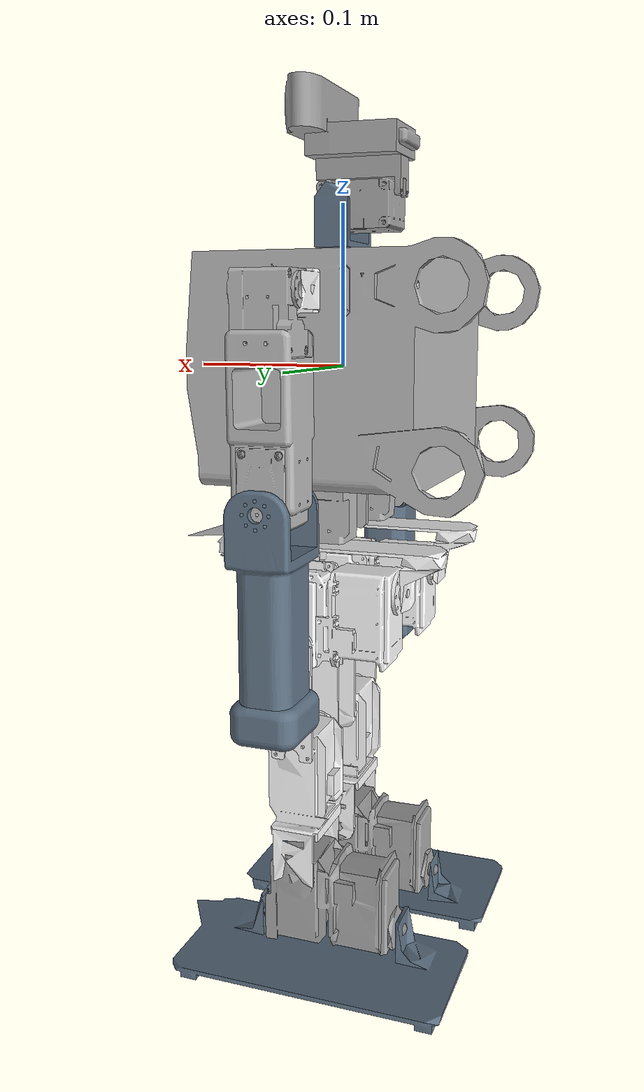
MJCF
<mujoco model="bez2">
  <compiler angle="radian"/>
  <default>
        <default class="mx106">
            <position kp="21" forcerange="-8 8" />
            <joint damping="1.7" armature="0.025" frictionloss="0.10" />
        </default>
        <default class="mx64">
            <position kp="12.5" forcerange="-5 5" />
            <joint damping="0.66" armature="0.012" frictionloss="0.09" />
        </default>
		<default class="xm430">
            <position kp="21.1" ctrlrange="-3.141592 3.141592" forcerange="-5 5"/>
            <joint damping="1.084" armature="0.045" frictionloss="0.03"/>
        </default>
    </default>
	<option noslip_iterations="1"></option>

  <asset>
    <mesh name="base_link" file="base_link.stl" scale="0.001 0.001 0.001"/>
    <mesh name="left_hip_side_v5_1" file="left_hip_side_v5_1.stl" scale="0.001 0.001 0.001"/>
    <mesh name="left_foot_v10_1" file="left_foot_v10_1.stl" scale="0.001 0.001 0.001"/>
    <mesh name="left_shoulder_v5_1" file="left_shoulder_v5_1.stl" scale="0.001 0.001 0.001"/>
    <mesh name="left_bicep_v6_1" file="left_bicep_v6_1.stl" scale="0.001 0.001 0.001"/>
    <mesh name="left_forearm_v4_1" file="left_forearm_v4_1.stl" scale="0.001 0.001 0.001"/>
    <mesh name="neck_v6_1" file="neck_v6_1.stl" scale="0.001 0.001 0.001"/>
    <mesh name="head_v4_1" file="head_v4_1.stl" scale="0.001 0.001 0.001"/>
    <mesh name="right_hip_side_v1_1" file="right_hip_side_v1_1.stl" scale="0.001 0.001 0.001"/>
    <mesh name="right_ankle_v2_1" file="right_ankle_v2_1.stl" scale="0.001 0.001 0.001"/>
    <mesh name="right_foot_v2_1" file="right_foot_v2_1.stl" scale="0.001 0.001 0.001"/>
    <mesh name="right_shoulder_v1_1" file="right_shoulder_v1_1.stl" scale="0.001 0.001 0.001"/>
    <mesh name="right_bicep_v2_1" file="right_bicep_v2_1.stl" scale="0.001 0.001 0.001"/>
    <mesh name="right_forearm_v1_1" file="right_forearm_v1_1.stl" scale="0.001 0.001 0.001"/>
    <mesh name="left_thigh_v1_1" file="left_thigh_v1_1.stl" scale="0.001 0.001 0.001"/>
    <mesh name="right_thigh_v1_1" file="right_thigh_v1_1.stl" scale="0.001 0.001 0.001"/>
    <mesh name="left_hip_front_v5_1" file="left_hip_front_v5_1.stl" scale="0.001 0.001 0.001"/>
    <mesh name="left_calve_v5_1" file="left_calve_v5_1.stl" scale="0.001 0.001 0.001"/>
    <mesh name="left_ankle_v7_1" file="left_ankle_v7_1.stl" scale="0.001 0.001 0.001"/>
    <mesh name="right_hip_front_v5_1" file="right_hip_front_v5_1.stl" scale="0.001 0.001 0.001"/>
    <mesh name="right_calve_v1_1" file="right_calve_v1_1.stl" scale="0.001 0.001 0.001"/>
  </asset>

  <worldbody>
    <body name="trunk">
      <freejoint name="root" />
      <site name="trunk" />
      <inertial pos="-0.132493 0.00329389 -0.0267196" quat="0.727595 0.68359 0.0487527 -0.0305389" mass="1.44293"
                diaginertia="0.00978489 0.00806535 0.00665576"/>
      <geom type="mesh" rgba="0.7 0.7 0.7 1" mesh="base_link"/>
      <body name="neck" pos="0 0.00025 0.0725">
        <inertial pos="8.93697e-11 0.00124098 0.0120405" quat="0.707107 0.707107 0 0" mass="0.00424711"
                  diaginertia="2e-06 2e-06 1e-06"/>
        <joint class="xm430" name="head_yaw" pos="0 0 0" axis="0 0 1"  actuatorfrcrange="-1.5 1.5"/>
        <geom pos="0 -0.00025 -0.0725" quat="1 0 0 0" type="mesh" rgba="0.364706 0.439216 0.509804 1" mesh="neck_v6_1"/>
        <body name="head" pos="0 -0.0185 0.025">
          <inertial pos="-0.0025762 0.0189918 0.0330059" quat="0.968363 -0.00401205 0.248843 0.0182951" mass="0.264339"
                    diaginertia="0.000267836 0.000238997 0.000135166"/>
          <joint class="xm430" name="head_pitch" pos="0 0 0" axis="0 1 0"  actuatorfrcrange="-1.5 1.5"/>
          <geom pos="0 0.01825 -0.0975" quat="1 0 0 0" type="mesh" rgba="0.627451 0.627451 0.627451 1" mesh="head_v4_1"/>
          <site name="camera" pos="0.015 0.00145 0.0474" quat="0 0.707107 0 -0.707107"/>
        </body>
      </body>
      <body name="left_shoulder" pos="0.003 0.084 0.04475">
        <inertial pos="8.92269e-11 0.00784403 0" quat="0.5 0.5 0.5 0.5" mass="0.0105929" diaginertia="3e-06 3e-06 1e-06"/>
        <joint class="xm430" name="left_shoulder_pitch" pos="0 0 0" axis="0 -1 0"  actuatorfrcrange="-4.1 4.1"/>
        <geom pos="-0.003 -0.084 -0.04475" quat="1 0 0 0" type="mesh" rgba="0.960784 0.960784 0.964706 1" mesh="left_shoulder_v5_1"/>
        <body name="left_bicep" pos="0.019 0.0303 0">
          <inertial pos="-0.0194205 0.000104779 -0.0605146" quat="0.692309 0.0113936 0.00585463 0.721487" mass="0.186364" diaginertia="0.000444025 0.000442243 3.47325e-05"/>
          <joint class="xm430" name="left_shoulder_roll" pos="0 0 0" axis="1 0 0"  actuatorfrcrange="-4.1 4.1"/>
          <geom pos="-0.022 -0.1143 -0.04475" quat="1 0 0 0" type="mesh" rgba="0.7 0.7 0.7 1" mesh="left_bicep_v6_1"/>
          <body name="left_forearm" pos="-0.020403 0.018801 -0.119141">
            <inertial pos="0.000490444 -0.0197004 -0.0814475" mass="0.0598454" diaginertia="0.000124 0.000119 2.1e-05"/>
            <joint class="xm430" name="left_elbow" pos="0 0 0" axis="0 -1 0"  actuatorfrcrange="-4.1 4.1"/>
            <geom pos="-0.001597 -0.133101 0.074391" type="mesh" rgba="0.364706 0.439216 0.509804 1" mesh="left_forearm_v4_1"/>
          </body>
        </body>
      </body>
      <body name="left_hip_side" pos="0.016 0.04125 -0.1085">
        <inertial pos="-0.0176303 0 -0.00718842" quat="0.487846 0.511866 0.511866 0.487846" mass="0.0392957" diaginertia="9.2e-05 9.01923e-05 6.80767e-06"/>
        <joint  class="xm430" name="left_hip_yaw" pos="0 0 0" axis="0 0 -1"  actuatorfrcrange="-4.1 4.1"/>
        <geom pos="-0.016 -0.04125 0.1085" quat="1 0 0 0" type="mesh" rgba="0.960784 0.960784 0.964706 1" mesh="left_hip_side_v5_1"/>
        <body name="left_hip_front" pos="-0.0707 0 -0.028">
          <inertial pos="0.0471916 0.000172982 -0.0174801" quat="0.456499 0.538085 0.517889 0.483595" mass="0.2722" diaginertia="0.000233099 0.000193073 0.000105828"/>
          <joint  class="mx64" name="left_hip_roll" pos="0 0 0" axis="1 0 0" />
          <geom pos="0.0547 -0.04125 0.1365" quat="1 0 0 0" type="mesh" rgba="0.960784 0.960784 0.964706 1" mesh="left_hip_front_v5_1"/>
          <body name="left_thigh" pos="0.066269 0.0235 -0.036">
            <inertial pos="-3.48325e-07 -0.0289611 -0.0366193" mass="0.0289828" diaginertia="3.5e-05 2.1e-05 1.7e-05"/>
            <joint  class="mx64" name="left_hip_pitch" pos="0 0 0" axis="0 -1 0"  />
            <geom pos="-0.011569 -0.06475 0.1725" quat="1 0 0 0" type="mesh" rgba="0.960784 0.960784 0.964706 1" mesh="left_thigh_v1_1"/>
            <body name="left_calve" pos="0 0 -0.072">
              <inertial pos="-5.27217e-05 -0.0237668 -0.0239014" quat="0.998068 -0.0621374 0 0" mass="0.15898" diaginertia="0.000124 0.000108 4.3e-05"/>
              <joint  class="mx64" name="left_knee" pos="0 0 0" axis="0 -1 0"  />
              <geom pos="-0.011569 -0.06475 0.2445" type="mesh" rgba="0.960784 0.960784 0.964706 1" mesh="left_calve_v5_1"/>
              <body name="left_ankle" pos="0 0 -0.088">
                <inertial pos="-0.019088 -0.023327 -0.0185199" quat="0.538085 0.456499 0.483595 0.517889" mass="0.2722" diaginertia="0.000233099 0.000193073 0.000105828"/>
                <joint  class="mx64" name="left_ankle_pitch" pos="0 0 0" axis="0 -1 0"  />
                <geom pos="-0.011569 -0.06475 0.3325" quat="1 0 0 0" type="mesh" rgba="0.627451 0.627451 0.627451 1" mesh="left_ankle_v7_1"/>
                <body name="left_foot" pos="-0.0663 -0.0235 -0.036">
                  <site name="left_foot" />
                  <inertial pos="0.0531233 0.0131171 -0.0171875" quat="0.0416633 0.697462 0.0260306 0.714936" mass="0.0392927" diaginertia="0.000144264 0.000123855 2.58809e-05"/>
                  <joint  class="mx64" name="left_ankle_roll" pos="0 0 0" axis="1 0 0" />
                  <geom pos="0.054731 -0.04125 0.3685" quat="1 0 0 0" type="mesh" rgba="0.364706 0.439216 0.509804 1" mesh="left_foot_v10_1"/>
                </body>
              </body>
            </body>
          </body>
        </body>
      </body>
      <body name="right_shoulder" pos="0.003 -0.084 0.04475">
        <inertial pos="8.95853e-11 -0.00784403 0" quat="0.5 0.5 0.5 0.5" mass="0.0105929" diaginertia="3e-06 3e-06 1e-06"/>
        <joint class="xm430" name="right_shoulder_pitch" pos="0 0 0" axis="0 -1 0"  actuatorfrcrange="-4.1 4.1"/>
        <geom pos="-0.003 0.084 -0.04475" quat="1 0 0 0" type="mesh" rgba="0.960784 0.960784 0.964706 1" mesh="right_shoulder_v1_1"/>
        <body name="right_bicep" pos="0.019 -0.0303 0">
          <inertial pos="-0.0190714 -0.00123171 -0.0605146" quat="0.751663 -0.00525377 0.0143766 0.659369" mass="0.186364" diaginertia="0.000444317 0.000443067 3.46163e-05"/>
          <joint class="xm430" name="right_shoulder_roll" pos="0 0 0" axis="-1 0 0" actuatorfrcrange="-4.1 4.1"/>
          <geom pos="-0.022 0.1143 -0.04475" quat="1 0 0 0" type="mesh" rgba="0.7 0.7 0.7 1" mesh="right_bicep_v2_1"/>
          <body name="right_forearm" pos="-0.019597 -0.020801 -0.119141">
            <inertial pos="0.000490325 0.0197004 -0.0814475" mass="0.0598454" diaginertia="0.000124 0.000119 2.1e-05"/>
            <joint class="xm430" name="right_elbow" pos="0 0 0" axis="0 -1 0"  actuatorfrcrange="-4.1 4.1"/>
            <geom pos="-0.002403 0.135101 0.074391" type="mesh" rgba="0.364706 0.439216 0.509804 1" mesh="right_forearm_v1_1"/>
          </body>
        </body>
      </body>
      <body name="right_hip_side" pos="0.016 -0.04125 -0.1085">
        <inertial pos="-0.0176303 0 -0.00718842" quat="0.487846 0.511866 0.511866 0.487846" mass="0.0392957" diaginertia="9.2e-05 9.01923e-05 6.80767e-06"/>
        <joint class="xm430" name="right_hip_yaw" pos="0 0 0" axis="0 0 1"  actuatorfrcrange="-4.1 4.1"/>
        <geom pos="-0.016 0.04125 0.1085" quat="1 0 0 0" type="mesh" rgba="0.960784 0.960784 0.964706 1" mesh="right_hip_side_v1_1"/>
        <body name="right_hip_front" pos="-0.0707 0 -0.028">
          <inertial pos="0.0472122 -0.000172989 -0.0174801" quat="0.483595 0.517889 0.538085 0.456499" mass="0.2722" diaginertia="0.000233099 0.000193073 0.000105828"/>
          <joint  class="mx64" name="right_hip_roll" pos="0 0 0" axis="-1 0 0"  />
          <geom pos="0.0547 0.04125 0.1365" quat="1 0 0 0" type="mesh" rgba="0.960784 0.960784 0.964706 1" mesh="right_hip_front_v5_1"/>
          <body name="right_thigh" pos="0.0663 -0.0235 -0.036">
            <inertial pos="9.83252e-08 0.0289611 -0.0366193" mass="0.0289828" diaginertia="3.5e-05 2.1e-05 1.7e-05"/>
            <joint  class="mx64" name="right_hip_pitch" pos="0 0 0" axis="0 -1 0"  />
            <geom pos="-0.0116 0.06475 0.1725" type="mesh" rgba="0.960784 0.960784 0.964706 1" mesh="right_thigh_v1_1"/>
            <body name="right_calve" pos="0 0 -0.072">
              <inertial pos="5.24717e-05 0.0237668 -0.0239014" quat="0.998068 0.0621374 0 0" mass="0.15898" diaginertia="0.000124 0.000108 4.3e-05"/>
              <joint  class="mx64" name="right_knee" pos="0 0 0" axis="0 -1 0"  />
              <geom pos="-0.0116 0.06475 0.2445" quat="1 0 0 0" type="mesh" rgba="0.960784 0.960784 0.964706 1" mesh="right_calve_v1_1"/>
              <body name="right_ankle" pos="0 0 -0.088">
                <inertial pos="-0.0193325 0.0235572 -0.0181705" quat="0.530545 0.465974 0.453347 0.543936" mass="0.2722" diaginertia="0.000229026 0.00019101 0.000105965"/>
                <joint  class="mx64" name="right_ankle_pitch" pos="0 0 0" axis="0 -1 0"  />
                <geom pos="-0.0116 0.06475 0.3325" quat="1 0 0 0" type="mesh" rgba="0.627451 0.627451 0.627451 1" mesh="right_ankle_v2_1"/>
                <body name="right_foot" pos="-0.0663 0.0235 -0.036">
                  <site name="right_foot" />
                  <inertial pos="0.0531235 -0.0131171 -0.0171875" quat="-0.0416633 0.697462 -0.0260306 0.714936" mass="0.0392927" diaginertia="0.000144264 0.000123855 2.58809e-05"/>
                  <joint class="mx64" name="right_ankle_roll" pos="0 0 0" axis="-1 0 0"  />
                  <geom pos="0.0547 0.04125 0.3685" quat="1 0 0 0" type="mesh" rgba="0.364706 0.439216 0.509804 1" mesh="right_foot_v2_1"/>
                </body>
              </body>
            </body>
          </body>
        </body>
      </body>
      <body name="imu_link">
        <inertial pos="0 0 0" mass="0.01" diaginertia="1e-09 1e-09 1e-09"/>
      </body>
    </body>
  </worldbody>

  <sensor>
        <gyro site="trunk" name="gyro" />

    </sensor>
  <actuator>
        <position class="mx64" name="left_hip_roll" joint="left_hip_roll" ctrlrange="-0.785398 1.5708" />
        <position class="mx64" name="left_hip_pitch" joint="left_hip_pitch" ctrlrange="-0.785398 2.35619" />
        <position class="mx64" name="left_knee" joint="left_knee" ctrlrange="-2.793 0" />
        <position class="mx64" name="left_ankle_pitch" joint="left_ankle_pitch" ctrlrange="-0.785398 1.5708" />
        <position class="mx64" name="left_ankle_roll" joint="left_ankle_roll" ctrlrange="-0.785398 0.785398" />
        <position class="mx64" name="right_hip_roll" joint="right_hip_roll" ctrlrange="-0.785398 1.5708" />
        <position class="mx64" name="right_hip_pitch" joint="right_hip_pitch" ctrlrange="-0.785398 2.35619" />
        <position class="mx64" name="right_knee" joint="right_knee" ctrlrange="-2.793 0" />
        <position class="mx64" name="right_ankle_pitch" joint="right_ankle_pitch" ctrlrange="-0.785398 1.5708" />
        <position class="mx64" name="right_ankle_roll" joint="right_ankle_roll" ctrlrange="-0.785398 0.785398" />

        <position class="xm430" name="head_yaw" joint="head_yaw" ctrlrange="-1.5708 1.5708" />
        <position class="xm430" name="head_pitch" joint="head_pitch" ctrlrange="0 1.5708" />
        <position class="xm430" name="left_hip_yaw" joint="left_hip_yaw" ctrlrange="-1.309 0.524" />
        <position class="xm430" name="right_hip_yaw" joint="right_hip_yaw" ctrlrange="-1.309 0.524" />
        <position class="xm430" name="left_shoulder_pitch" joint="left_shoulder_pitch" ctrlrange="-3.14159 3.92699" />
        <position class="xm430" name="left_shoulder_roll" joint="left_shoulder_roll" ctrlrange="0 1.5708" />
        <position class="xm430" name="left_elbow" joint="left_elbow" ctrlrange="0 3.14159" />
        <position class="xm430" name="right_shoulder_pitch" joint="right_shoulder_pitch" ctrlrange="-3.14159 3.92699" />
        <position class="xm430" name="right_shoulder_roll" joint="right_shoulder_roll" ctrlrange="0 1.5708" />
        <position class="xm430" name="right_elbow" joint="right_elbow" ctrlrange="0 3.14159" />
    </actuator>
</mujoco>
